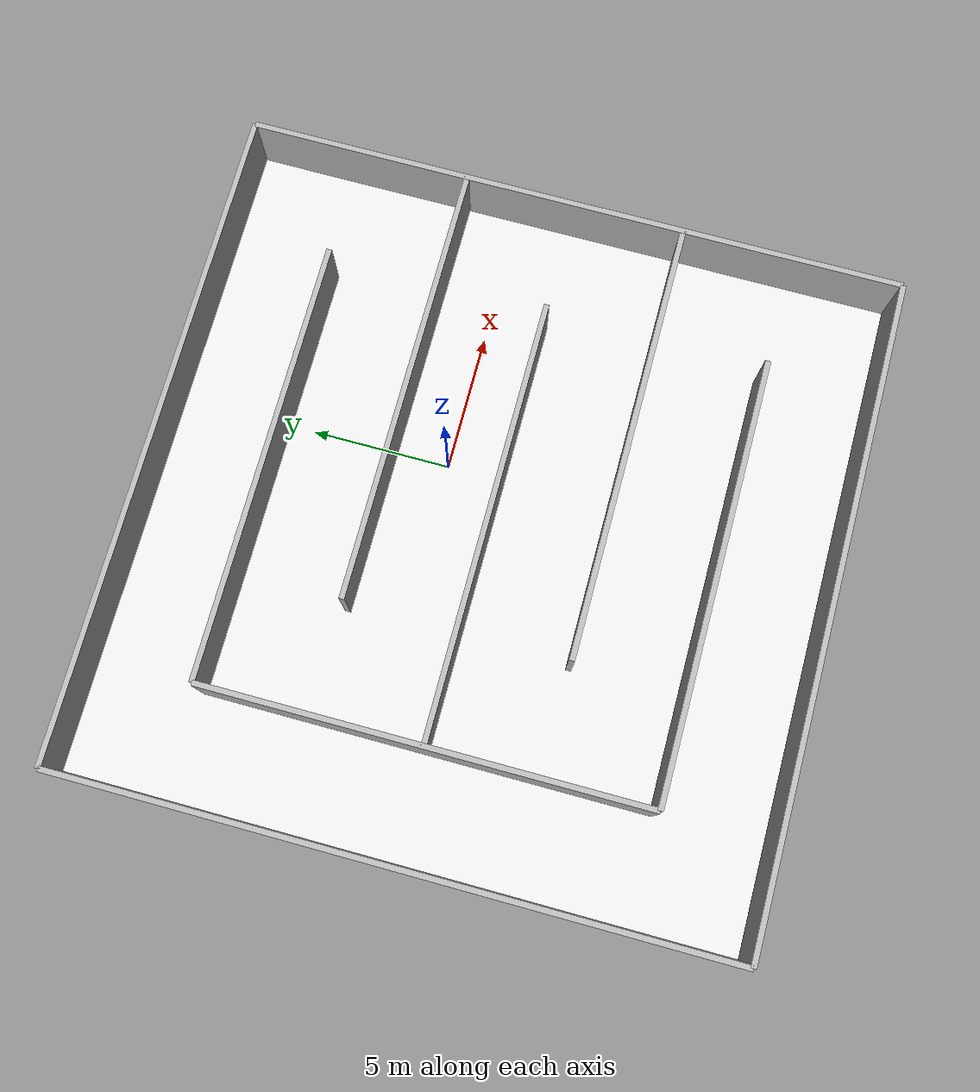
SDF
<?xml version="1.0"?>
<sdf version="1.9">

<world name="winding_room">

  <plugin
    filename="gz-sim-physics-system"
    name="gz::sim::systems::Physics"/>

  <plugin
    filename="gz-sim-user-commands-system"
    name="gz::sim::systems::UserCommands"/>

  <plugin
    filename="gz-sim-scene-broadcaster-system"
    name="gz::sim::systems::SceneBroadcaster"/>

  <plugin
    filename="gz-sim-sensors-system"
    name="gz::sim::systems::Sensors">
    <render_engine>ogre2</render_engine>
  </plugin>

  <!-- Physics -->

  <gravity>0 0 -9.81</gravity>

  <physics name="physics" type="ignored">
    <max_step_size>0.001</max_step_size>
    <real_time_factor>1.0</real_time_factor>
  </physics>

  <!-- Scene -->

  <scene>
    <ambient>0.45 0.45 0.45 1</ambient>
    <background>0.85 0.90 0.95 1</background>
    <shadows>true</shadows>
  </scene>

  <!-- Directional Light -->

  <light name="sun" type="directional">
    <cast_shadows>true</cast_shadows>
    <pose>0 0 20 0 0 0</pose>

    <diffuse>1 1 1 1</diffuse>
    <specular>0.2 0.2 0.2 1</specular>

    <attenuation>
      <range>1000</range>
      <constant>0.9</constant>
      <linear>0.01</linear>
      <quadratic>0.001</quadratic>
    </attenuation>

    <direction>-0.5 0.3 -1</direction>
  </light>

  <!-- Floor -->

  <model name="floor">
    <static>true</static>

    <pose>-2 -2 -0.025 0 0 0</pose>

    <link name="link">
      <collision name="collision">
        <geometry>
          <box>
            <size>24 24 0.05</size>
          </box>
        </geometry>
      </collision>

      <visual name="visual">
        <geometry>
          <box>
            <size>24 24 0.05</size>
          </box>
        </geometry>

        <material>
          <ambient>0.92 0.92 0.92 1</ambient>
          <diffuse>0.92 0.92 0.92 1</diffuse>
        </material>
      </visual>
    </link>
  </model>

  <!-- Outer Walls -->

  <model name="left_wall">
    <static>true</static>

    <pose>-10 -2.0 1.25 0 0 0</pose>

    <link name="link">
      <collision name="collision">
        <geometry>
          <box>
            <size>0.2 16 2.5</size>
          </box>
        </geometry>
      </collision>

      <visual name="visual">
        <geometry>
          <box>
            <size>0.2 16 2.5</size>
          </box>
        </geometry>
      </visual>
    </link>
  </model>

  <model name="left_wall_outer">
    <static>true</static>

    <pose>-14 -2.0 1.25 0 0 0</pose>

    <link name="link">
      <collision name="collision">
        <geometry>
          <box>
            <size>0.2 24 2.5</size>
          </box>
        </geometry>
      </collision>

      <visual name="visual">
        <geometry>
          <box>
            <size>0.2 24 2.5</size>
          </box>
        </geometry>
      </visual>
    </link>
  </model>

  <model name="right_wall">
    <static>true</static>

    <pose>10 -2 1.25 0 0 0</pose>

    <link name="link">
      <collision name="collision">
        <geometry>
          <box>
            <size>0.2 24 2.5</size>
          </box>
        </geometry>
      </collision>

      <visual name="visual">
        <geometry>
          <box>
            <size>0.2 24 2.5</size>
          </box>
        </geometry>
      </visual>
    </link>
  </model>

  <model name="bottom_wall">
    <static>true</static>

    <pose>-2 -10 1.25 0 0 0</pose>

    <link name="link">
      <collision name="collision">
        <geometry>
          <box>
            <size>16 0.2 2.5</size>
          </box>
        </geometry>
      </collision>

      <visual name="visual">
        <geometry>
          <box>
            <size>16 0.2 2.5</size>
          </box>
        </geometry>
      </visual>
    </link>
  </model>

  <model name="bottom_wall_outer">
    <static>true</static>

    <pose>-2 -14 1.25 0 0 0</pose>

    <link name="link">
      <collision name="collision">
        <geometry>
          <box>
            <size>24 0.2 2.5</size>
          </box>
        </geometry>
      </collision>

      <visual name="visual">
        <geometry>
          <box>
            <size>24 0.2 2.5</size>
          </box>
        </geometry>
      </visual>
    </link>
  </model>

  <model name="top_wall">
    <static>true</static>

    <pose>-2 10 1.25 0 0 0</pose>

    <link name="link">
      <collision name="collision">
        <geometry>
          <box>
            <size>24 0.2 2.5</size>
          </box>
        </geometry>
      </collision>

      <visual name="visual">
        <geometry>
          <box>
            <size>24 0.2 2.5</size>
          </box>
        </geometry>
      </visual>
    </link>
  </model>

  <!-- Internal Walls -->

  <model name="wall1">
    <static>true</static>

    <pose>-2 6 1.25 0 0 0</pose>

    <link name="link">
      <collision name="collision">
        <geometry>
          <box>
            <size>16 0.2 2.5</size>
          </box>
        </geometry>
      </collision>

      <visual name="visual">
        <geometry>
          <box>
            <size>16 0.2 2.5</size>
          </box>
        </geometry>
      </visual>
    </link>
  </model>

  <model name="wall2">
    <static>true</static>

    <pose>2 2 1.25 0 0 0</pose>

    <link name="link">
      <collision name="collision">
        <geometry>
          <box>
            <size>16 0.2 2.5</size>
          </box>
        </geometry>
      </collision>

      <visual name="visual">
        <geometry>
          <box>
            <size>16 0.2 2.5</size>
          </box>
        </geometry>
      </visual>
    </link>
  </model>

  <model name="wall3">
    <static>true</static>

    <pose>-2 -2 1.25 0 0 0</pose>

    <link name="link">
      <collision name="collision">
        <geometry>
          <box>
            <size>16 0.2 2.5</size>
          </box>
        </geometry>
      </collision>

      <visual name="visual">
        <geometry>
          <box>
            <size>16 0.2 2.5</size>
          </box>
        </geometry>
      </visual>
    </link>
  </model>

  <model name="wall4">
    <static>true</static>

    <pose>2 -6 1.25 0 0 0</pose>

    <link name="link">
      <collision name="collision">
        <geometry>
          <box>
            <size>16 0.2 2.5</size>
          </box>
        </geometry>
      </collision>

      <visual name="visual">
        <geometry>
          <box>
            <size>16 0.2 2.5</size>
          </box>
        </geometry>
      </visual>
    </link>
  </model>

</world>

</sdf>
